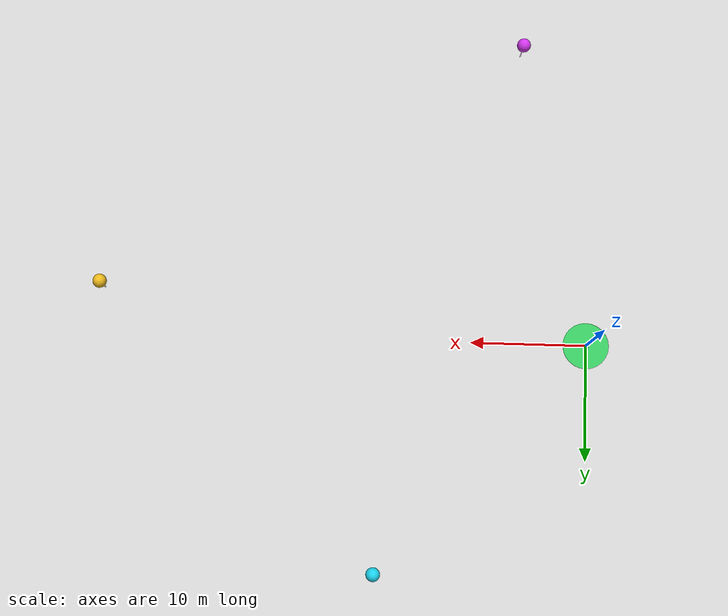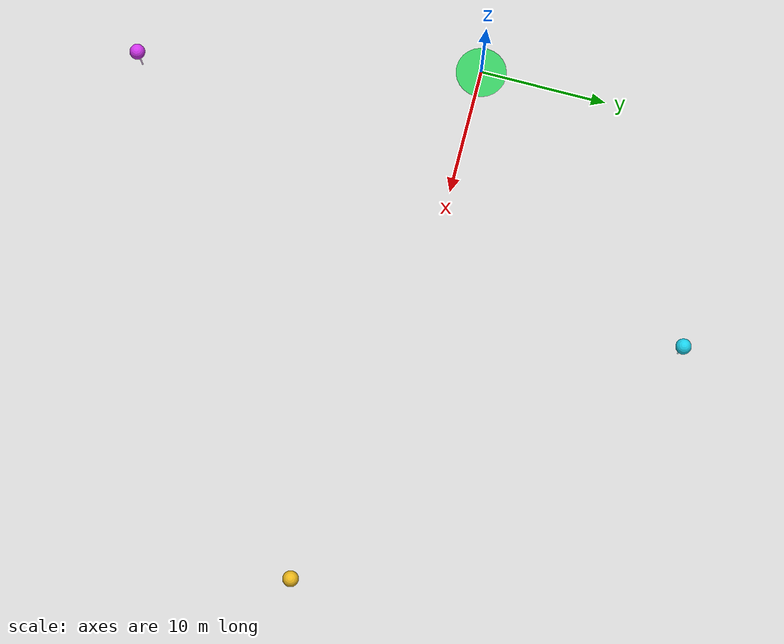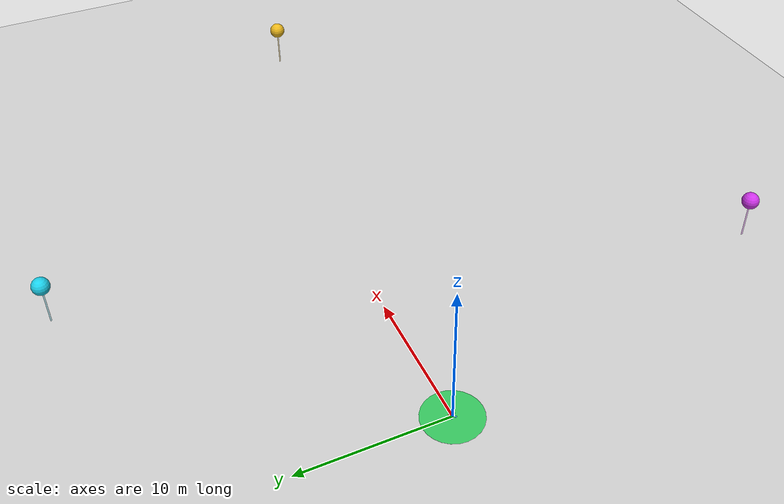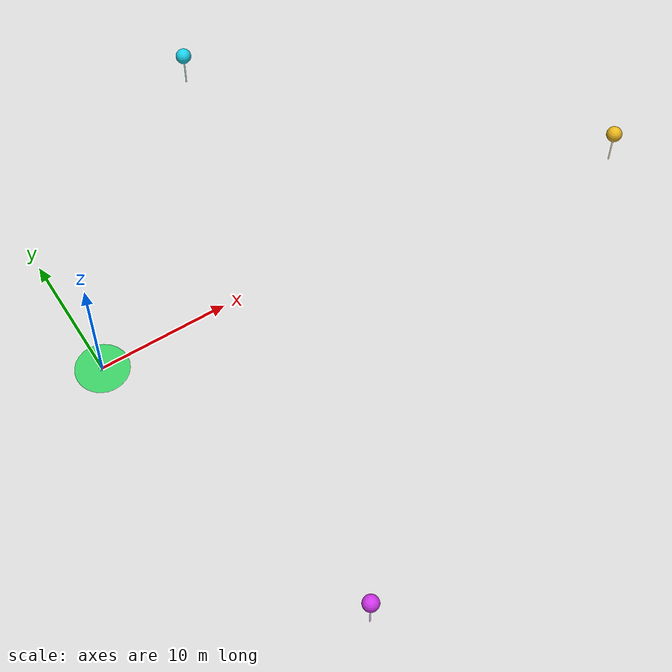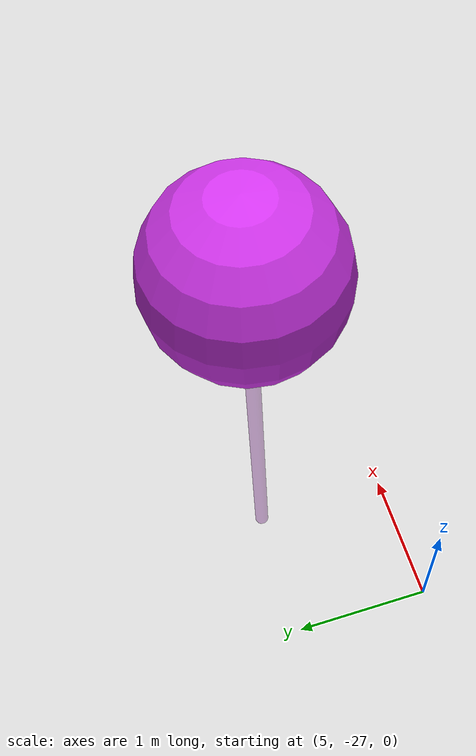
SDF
<?xml version="1.0" ?>
<sdf version="1.6">
  <world name="quadrotor_mission_world">
    <gravity>0 0 -9.81</gravity>

    <!-- Physics parameters -->
    <physics type="ode">
      <max_step_size>0.004</max_step_size>
      <real_time_factor>1.0</real_time_factor>
      <real_time_update_rate>250</real_time_update_rate>
    </physics>

    <!-- Sun Light Source -->
    <include>
      <uri>model://sun</uri>
    </include>

    <!-- Ground Plane -->
    <include>
      <uri>model://ground_plane</uri>
    </include>

    <!-- HOME Helipad Indicator (0, 0, 0.01) -->
    <model name="home_pad">
      <static>true</static>
      <pose>0 0 0.005 0 0 0</pose>
      <link name="pad_link">
        <visual name="pad_visual">
          <geometry>
            <cylinder><radius>2.0</radius><length>0.01</length></cylinder>
          </geometry>
          <material>
            <ambient>0.1 0.7 0.3 0.8</ambient>
            <diffuse>0.1 0.8 0.3 0.8</diffuse>
          </material>
        </visual>
      </link>
    </model>

    <!-- Waypoint A Beacon Visual (North: 20m, East: 18m) -->
    <model name="waypoint_a">
      <static>true</static>
      <pose>18 20 3.0 0 0 0</pose>
      <link name="beacon_link">
        <visual name="beacon_sphere">
          <geometry>
            <sphere><radius>0.6</radius></sphere>
          </geometry>
          <material>
            <ambient>0.1 0.8 0.9 0.9</ambient>
            <diffuse>0.1 0.8 0.9 0.9</diffuse>
          </material>
        </visual>
        <visual name="beacon_pole">
          <pose>0 0 -3.0 0 0 0</pose>
          <geometry>
            <cylinder><radius>0.05</radius><length>6.0</length></cylinder>
          </geometry>
          <material>
            <ambient>0.2 0.7 0.8 0.4</ambient>
            <diffuse>0.2 0.7 0.8 0.4</diffuse>
          </material>
        </visual>
      </link>
    </model>

    <!-- Waypoint B Beacon Visual (North: -4m, East: 42m) -->
    <model name="waypoint_b">
      <static>true</static>
      <pose>42 -4 3.0 0 0 0</pose>
      <link name="beacon_link">
        <visual name="beacon_sphere">
          <geometry>
            <sphere><radius>0.6</radius></sphere>
          </geometry>
          <material>
            <ambient>0.9 0.7 0.1 0.9</ambient>
            <diffuse>0.9 0.7 0.1 0.9</diffuse>
          </material>
        </visual>
        <visual name="beacon_pole">
          <pose>0 0 -3.0 0 0 0</pose>
          <geometry>
            <cylinder><radius>0.05</radius><length>6.0</length></cylinder>
          </geometry>
          <material>
            <ambient>0.8 0.6 0.1 0.4</ambient>
            <diffuse>0.8 0.6 0.1 0.4</diffuse>
          </material>
        </visual>
      </link>
    </model>

    <!-- Waypoint C Beacon Visual (North: -26m, East: 6m) -->
    <model name="waypoint_c">
      <static>true</static>
      <pose>6 -26 3.0 0 0 0</pose>
      <link name="beacon_link">
        <visual name="beacon_sphere">
          <geometry>
            <sphere><radius>0.6</radius></sphere>
          </geometry>
          <material>
            <ambient>0.8 0.2 0.9 0.9</ambient>
            <diffuse>0.8 0.2 0.9 0.9</diffuse>
          </material>
        </visual>
        <visual name="beacon_pole">
          <pose>0 0 -3.0 0 0 0</pose>
          <geometry>
            <cylinder><radius>0.05</radius><length>6.0</length></cylinder>
          </geometry>
          <material>
            <ambient>0.7 0.2 0.8 0.4</ambient>
            <diffuse>0.7 0.2 0.8 0.4</diffuse>
          </material>
        </visual>
      </link>
    </model>

    <!-- Quadrotor Drone Model -->
    <include>
      <uri>model://quadrotor</uri>
      <pose>0 0 0.05 0 0 0</pose>
    </include>

    <!-- GUI Camera View Setup -->
    <gui fullscreen='0'>
      <camera name='user_camera'>
        <pose>-6.0 -6.0 4.5 0 0.45 0.785</pose>
        <view_controller>orbit</view_controller>
      </camera>
    </gui>
  </world>
</sdf>

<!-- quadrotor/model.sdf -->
<sdf version="1.6">
  <model name="quadrotor">
    <pose>0 0 0.1 0 0 0</pose>
    <static>false</static>

    <!-- Central Chassis / LiteWing Body -->
    <link name="base_link">
      <inertial>

        <mass>1.0</mass>
        <inertia>
          <ixx>0.012</ixx>
          <ixy>0</ixy>
          <ixz>0</ixz>
          <iyy>0.012</iyy>
          <iyz>0</iyz>
          <izz>0.020</izz>
        </inertia>
      </inertial>

      <!-- Center Body Visual -->
      <visual name="chassis_visual">
        <pose>0 0 0 0 0 0</pose>
        <geometry>
          <box>
            <size>0.14 0.14 0.04</size>
          </box>
        </geometry>
        <material>
          <ambient>0.15 0.15 0.18 1</ambient>
          <diffuse>0.2 0.2 0.25 1</diffuse>
          <specular>0.5 0.5 0.5 1</specular>
        </material>
      </visual>

      <!-- LiteWing Flight Controller Board Visual -->
      <visual name="litewing_board">
        <pose>0 0 0.022 0 0 0</pose>
        <geometry>
          <box>
            <size>0.06 0.06 0.005</size>
          </box>
        </geometry>
        <material>
          <ambient>0.1 0.5 0.2 1</ambient>
          <diffuse>0.1 0.7 0.3 1</diffuse>
        </material>
      </visual>

      <!-- LiPo Battery Visual Underneath -->
      <visual name="battery_visual">
        <pose>0 0 -0.025 0 0 0</pose>
        <geometry>
          <box>
            <size>0.10 0.045 0.03</size>
          </box>
        </geometry>
        <material>
          <ambient>0.7 0.6 0.1 1</ambient>
          <diffuse>0.9 0.7 0.1 1</diffuse>
        </material>
      </visual>

      <!-- Elevated GPS Mast -->
      <visual name="gps_mast">
        <pose>-0.03 0 0.07 0 0 0</pose>
        <geometry>
          <cylinder>
            <radius>0.004</radius>
            <length>0.10</length>
          </cylinder>
        </geometry>
        <material>
          <ambient>0.3 0.3 0.3 1</ambient>
          <diffuse>0.4 0.4 0.4 1</diffuse>
        </material>
      </visual>

      <!-- GPS GNSS Antenna Puck -->
      <visual name="gps_antenna">
        <pose>-0.03 0 0.12 0 0 0</pose>
        <geometry>
          <cylinder>
            <radius>0.025</radius>
            <length>0.012</length>
          </cylinder>
        </geometry>
        <material>
          <ambient>0.8 0.8 0.8 1</ambient>
          <diffuse>0.9 0.9 0.9 1</diffuse>
        </material>
      </visual>

      <!-- Carbon Fiber Arm 1: Front-Right (+X, -Y) -->
      <visual name="arm_fr">
        <pose>0.07 -0.07 0 0 0 -0.7854</pose>
        <geometry>
          <box>
            <size>0.14 0.015 0.012</size>
          </box>
        </geometry>
        <material>
          <ambient>0.1 0.1 0.1 1</ambient>
          <diffuse>0.15 0.15 0.15 1</diffuse>
        </material>
      </visual>

      <!-- Carbon Fiber Arm 2: Front-Left (+X, +Y) -->
      <visual name="arm_fl">
        <pose>0.07 0.07 0 0 0 0.7854</pose>
        <geometry>
          <box>
            <size>0.14 0.015 0.012</size>
          </box>
        </geometry>
        <material>
          <ambient>0.1 0.1 0.1 1</ambient>
          <diffuse>0.15 0.15 0.15 1</diffuse>
        </material>
      </visual>

      <!-- Carbon Fiber Arm 3: Rear-Left (-X, +Y) -->
      <visual name="arm_rl">
        <pose>-0.07 0.07 0 0 0 -0.7854</pose>
        <geometry>
          <box>
            <size>0.14 0.015 0.012</size>
          </box>
        </geometry>
        <material>
          <ambient>0.1 0.1 0.1 1</ambient>
          <diffuse>0.15 0.15 0.15 1</diffuse>
        </material>
      </visual>

      <!-- Carbon Fiber Arm 4: Rear-Right (-X, -Y) -->
      <visual name="arm_rr">
        <pose>-0.07 -0.07 0 0 0 0.7854</pose>
        <geometry>
          <box>
            <size>0.14 0.015 0.012</size>
          </box>
        </geometry>
        <material>
          <ambient>0.1 0.1 0.1 1</ambient>
          <diffuse>0.15 0.15 0.15 1</diffuse>
        </material>
      </visual>

      <!-- Motor Mounts -->
      <visual name="motor_fr">
        <pose>0.1414 -0.1414 0.015 0 0 0</pose>
        <geometry>
          <cylinder><radius>0.018</radius><length>0.025</length></cylinder>
        </geometry>
        <material><ambient>0.8 0.1 0.1 1</ambient><diffuse>0.9 0.2 0.2 1</diffuse></material>
      </visual>
      <visual name="motor_fl">
        <pose>0.1414 0.1414 0.015 0 0 0</pose>
        <geometry>
          <cylinder><radius>0.018</radius><length>0.025</length></cylinder>
        </geometry>
        <material><ambient>0.8 0.1 0.1 1</ambient><diffuse>0.9 0.2 0.2 1</diffuse></material>
      </visual>
      <visual name="motor_rl">
        <pose>-0.1414 0.1414 0.015 0 0 0</pose>
        <geometry>
          <cylinder><radius>0.018</radius><length>0.025</length></cylinder>
        </geometry>
        <material><ambient>0.1 0.4 0.8 1</ambient><diffuse>0.2 0.5 0.9 1</diffuse></material>
      </visual>
      <visual name="motor_rr">
        <pose>-0.1414 -0.1414 0.015 0 0 0</pose>
        <geometry>
          <cylinder><radius>0.018</radius><length>0.025</length></cylinder>
        </geometry>
        <material><ambient>0.1 0.4 0.8 1</ambient><diffuse>0.2 0.5 0.9 1</diffuse></material>
      </visual>

      <!-- Propeller Discs (Front = Red/Amber, Rear = Cyan/Blue) -->
      <visual name="prop_fr">
        <pose>0.1414 -0.1414 0.03 0 0 0</pose>
        <geometry>
          <cylinder><radius>0.08</radius><length>0.003</length></cylinder>
        </geometry>
        <material><ambient>0.9 0.3 0.1 0.7</ambient><diffuse>0.9 0.3 0.1 0.7</diffuse></material>
      </visual>
      <visual name="prop_fl">
        <pose>0.1414 0.1414 0.03 0 0 0</pose>
        <geometry>
          <cylinder><radius>0.08</radius><length>0.003</length></cylinder>
        </geometry>
        <material><ambient>0.9 0.3 0.1 0.7</ambient><diffuse>0.9 0.3 0.1 0.7</diffuse></material>
      </visual>
      <visual name="prop_rl">
        <pose>-0.1414 0.1414 0.03 0 0 0</pose>
        <geometry>
          <cylinder><radius>0.08</radius><length>0.003</length></cylinder>
        </geometry>
        <material><ambient>0.1 0.7 0.9 0.7</ambient><diffuse>0.1 0.7 0.9 0.7</diffuse></material>
      </visual>
      <visual name="prop_rr">
        <pose>-0.1414 -0.1414 0.03 0 0 0</pose>
        <geometry>
          <cylinder><radius>0.08</radius><length>0.003</length></cylinder>
        </geometry>
        <material><ambient>0.1 0.7 0.9 0.7</ambient><diffuse>0.1 0.7 0.9 0.7</diffuse></material>
      </visual>

      <!-- Main Body Collision Cylinder -->
      <collision name="chassis_collision">
        <pose>0 0 0 0 0 0</pose>
        <geometry>
          <cylinder>
            <radius>0.24</radius>
            <length>0.08</length>
          </cylinder>
        </geometry>
      </collision>
    </link>

    <!-- Zero-Latency Native In-Memory 6-DOF UDP Telemetry Plugin -->
    <plugin name="quadrotor_pose_plugin" filename="libquadrotor_pose_plugin.so"/>
  </model>
</sdf>
